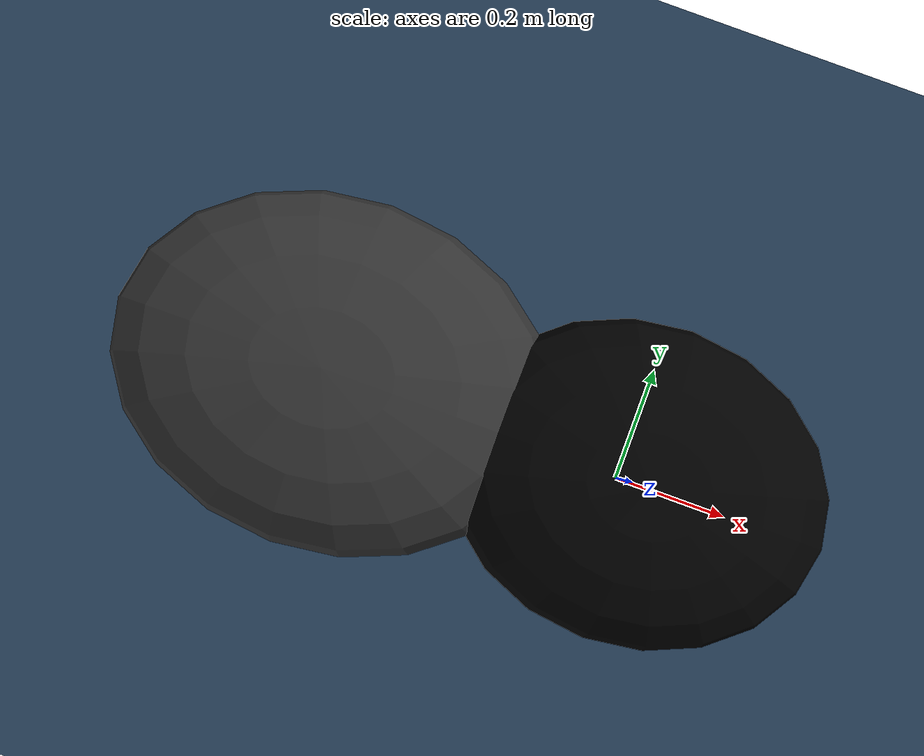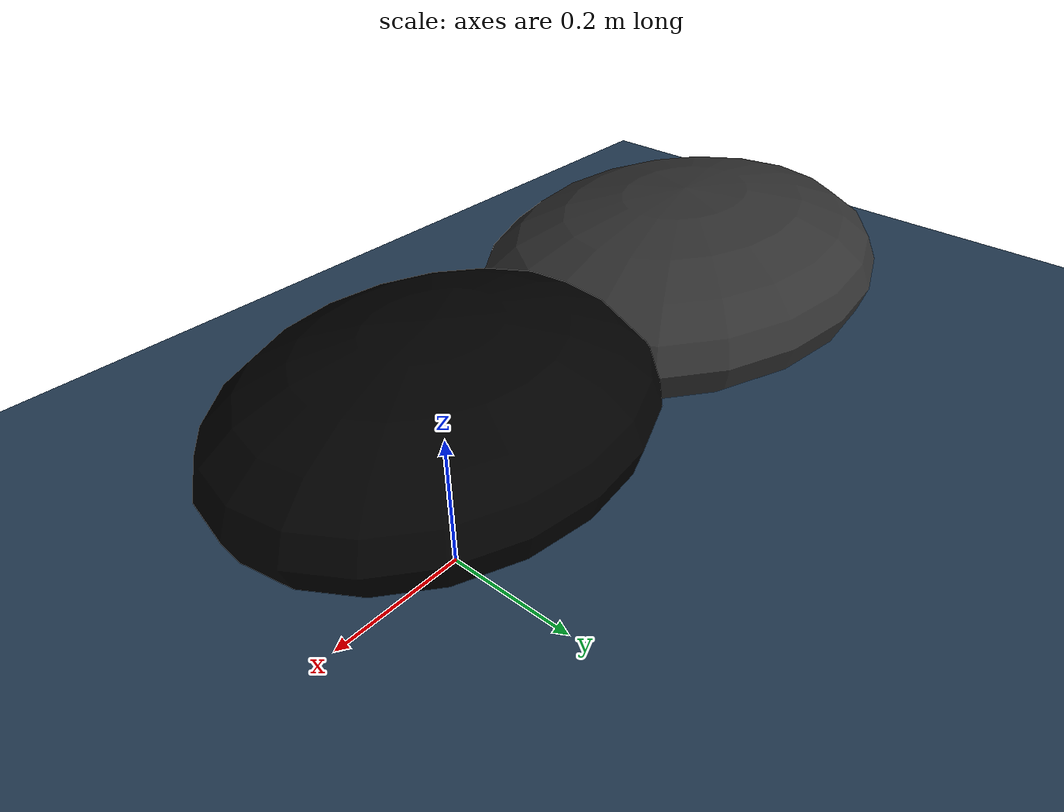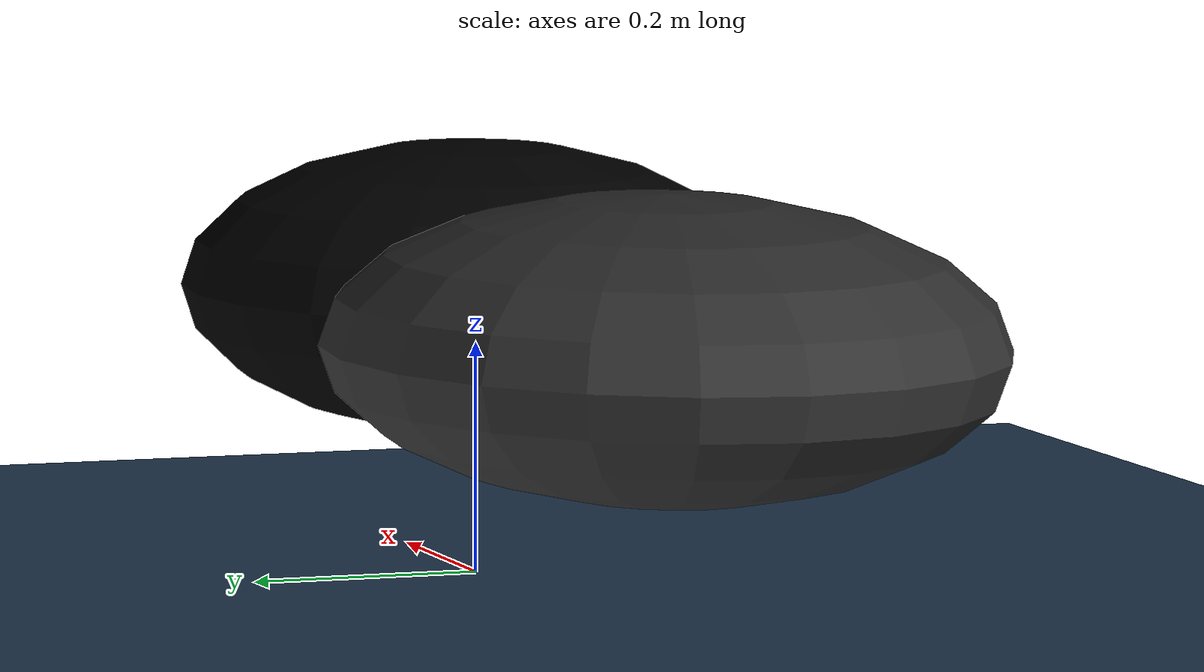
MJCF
<mujoco model="spiderbot_scene">

    <option gravity="0 0 -9.81" timestep="0.002" />

    <asset>
        <texture type="skybox" builtin="gradient" rgb1="0.3 0.5 0.7" rgb2="0 0 0" width="512" height="512"/>
        <texture name="grid" type="2d" builtin="checker" rgb1=".1 .2 .3" rgb2=".2 .3 .4" width="300" height="300" mark="edge" markrgb=".2 .3 .4"/>
        <material name="grid_floor" texture="grid" texrepeat="1 1" texuniform="true"/>
    </asset>

    <default>
        <default class="coxa">
            <joint type="hinge" axis="0 1 0" pos="0 0 0" limited="true" range="-45 45"/>
            <geom type="sphere" size="0.04" mass="1" contype="4" conaffinity="1"/>
        </default>
        <default class="femur">
            <joint type="hinge" axis="1 0 0" pos="0 0 0" limited="true" range="-90 0"/>
            <geom type="capsule" fromto="0 0 0  0 0 -0.25" size="0.04" mass="1"/>
        </default>
        <default class="tibia">
            <joint type="hinge" axis="1 0 0" pos="0 0 0" limited="true" range="0 135"/>
            <geom type="capsule" fromto="0 0 0  0 0 -0.25" size="0.02" mass="1"/>
        </default>
        <default class="claw">
            <geom type="capsule" fromto="0 0 0  0 0 -0.025" size="0.02" rgba="0.5 0.5 0.5 1" friction="5.0 0.01 0.001"/>
        </default>
    </default>

    <worldbody>
        <light pos="0 0 4" dir="0 0 -1" castshadow="true"/>

        <geom name="floor" type="plane" size="0 0 0.25" material="grid_floor" contype="1" conaffinity="7"/>

        <body name="target" pos="0 0 0.75" mocap="true">
            <geom name="target_backward_geom" type="cylinder" fromto="0 0 0 -0.075 0 0" size="0.01 0" rgba="0.1 0.4 0.85 0" contype="0" conaffinity="0"/>
            <geom name="target_forward_geom" type="sphere" size="0.015 0" rgba="1 0.25 0 0" contype="0" conaffinity="0"/>
        </body>

        <body name="pose_arrow" pos="0 0 0.75" mocap="true">
            <geom name="pose_arrow_backward_geom" type="cylinder" fromto="0 0 0 -0.075 0 0" size="0.01 0" rgba="0.9 0.6 0.15 0" contype="0" conaffinity="0"/>
            <geom name="pose_arrow_forward_geom" type="sphere" size="0.015 0" rgba="0 0.75 0 0" contype="0" conaffinity="0"/>
        </body>

        <body name="cephalothorax" pos="0 0 0.25">
            <freejoint name="cephalothorax_joint"/>
            <geom type="ellipsoid" size="0.3 0.25 0.125" rgba="0 0 0 1" mass="0.5" friction="1 0.01 0.0001" contype="2" conaffinity="1"/>

            <body name="abdomen" pos="-0.5 0 0">
                <geom type="ellipsoid" size="0.35 0.275 0.125" rgba="0.2 0.2 0.2 1" mass="0.05" friction="1 0.01 0.0001"/>
            </body>

            <!-- Eyes -->
            <camera name="l_eye" pos="0.3 0.05 0" euler="90 -90 0"/>
            <camera name="r_eye" pos="0.3 -0.05 0" euler="90 -90 0"/>

            <!-- Cephalothorax connects to coxa [then trochanter] then femur [then patella] then tibia [then metatarsus] [then tarsus] then claws -->
            <!-- Legs are built dynamically with Python -->

        </body>
    </worldbody>

    <!-- Left coxa to cephalothorax -->
    <actuator>
        <position name="servo_l_i_coxa_pitch" joint="l_i_cephalothorax_coxa_joint" kp="40" ctrlrange="-45 45" forcerange="-20 20"/>
    </actuator>
    <actuator>
        <position name="servo_l_ii_coxa_pitch" joint="l_ii_cephalothorax_coxa_joint" kp="40" ctrlrange="-45 45" forcerange="-20 20"/>
    </actuator>
    <actuator>
        <position name="servo_l_iii_coxa_pitch" joint="l_iii_cephalothorax_coxa_joint" kp="40" ctrlrange="-45 45" forcerange="-20 20"/>
    </actuator>
    <actuator>
        <position name="servo_l_iv_coxa_pitch" joint="l_iv_cephalothorax_coxa_joint" kp="40" ctrlrange="-45 45" forcerange="-20 20"/>
    </actuator>

    <!-- Left femur to coxa -->
    <actuator>
        <position name="servo_l_i_femur_pitch" joint="l_i_coxa_femur_joint" kp="40" ctrlrange="-90 0" forcerange="-20 20"/>
    </actuator>
    <actuator>
        <position name="servo_l_ii_femur_pitch" joint="l_ii_coxa_femur_joint" kp="40" ctrlrange="-90 0" forcerange="-20 20"/>
    </actuator>
    <actuator>
        <position name="servo_l_iii_femur_pitch" joint="l_iii_coxa_femur_joint" kp="40" ctrlrange="-90 0" forcerange="-20 20"/>
    </actuator>
    <actuator>
        <position name="servo_l_iv_femur_pitch" joint="l_iv_coxa_femur_joint" kp="40" ctrlrange="-90 0" forcerange="-20 20"/>
    </actuator>

    <!-- Left tibia to femur -->
    <actuator>
        <position name="servo_l_i_tibia_pitch" joint="l_i_femur_tibia_joint" kp="40" ctrlrange="0 135" forcerange="-20 20"/>
    </actuator>
    <actuator>
        <position name="servo_l_ii_tibia_pitch" joint="l_ii_femur_tibia_joint" kp="40" ctrlrange="0 135" forcerange="-20 20"/>
    </actuator>
    <actuator>
        <position name="servo_l_iii_tibia_pitch" joint="l_iii_femur_tibia_joint" kp="40" ctrlrange="0 135" forcerange="-20 20"/>
    </actuator>
    <actuator>
        <position name="servo_l_iv_tibia_pitch" joint="l_iv_femur_tibia_joint" kp="40" ctrlrange="0 135" forcerange="-20 20"/>
    </actuator>

    <!-- Right coxa to body -->
    <actuator>
        <position name="servo_r_i_coxa_pitch" joint="r_i_cephalothorax_coxa_joint" kp="40" ctrlrange="-45 45" forcerange="-20 20"/>
    </actuator>
    <actuator>
        <position name="servo_r_ii_coxa_pitch" joint="r_ii_cephalothorax_coxa_joint" kp="40" ctrlrange="-45 45" forcerange="-20 20"/>
    </actuator>
    <actuator>
        <position name="servo_r_iii_coxa_pitch" joint="r_iii_cephalothorax_coxa_joint" kp="40" ctrlrange="-45 45" forcerange="-20 20"/>
    </actuator>
    <actuator>
        <position name="servo_r_iv_coxa_pitch" joint="r_iv_cephalothorax_coxa_joint" kp="40" ctrlrange="-45 45" forcerange="-20 20"/>
    </actuator>

    <!-- Right femur to coxa -->
    <actuator>
        <position name="servo_r_i_femur_pitch" joint="r_i_coxa_femur_joint" kp="40" ctrlrange="-90 0" forcerange="-20 20"/>
    </actuator>
    <actuator>
        <position name="servo_r_ii_femur_pitch" joint="r_ii_coxa_femur_joint" kp="40" ctrlrange="-90 0" forcerange="-20 20"/>
    </actuator>
    <actuator>
        <position name="servo_r_iii_femur_pitch" joint="r_iii_coxa_femur_joint" kp="40" ctrlrange="-90 0" forcerange="-20 20"/>
    </actuator>
    <actuator>
        <position name="servo_r_iv_femur_pitch" joint="r_iv_coxa_femur_joint" kp="40" ctrlrange="-90 0" forcerange="-20 20"/>
    </actuator>

    <!-- Right tibia to femur -->
    <actuator>
        <position name="servo_r_i_tibia_pitch" joint="r_i_femur_tibia_joint" kp="40" ctrlrange="0 135" forcerange="-20 20"/>
    </actuator>
    <actuator>
        <position name="servo_r_ii_tibia_pitch" joint="r_ii_femur_tibia_joint" kp="40" ctrlrange="0 135" forcerange="-20 20"/>
    </actuator>
    <actuator>
        <position name="servo_r_iii_tibia_pitch" joint="r_iii_femur_tibia_joint" kp="40" ctrlrange="0 135" forcerange="-20 20"/>
    </actuator>
    <actuator>
        <position name="servo_r_iv_tibia_pitch" joint="r_iv_femur_tibia_joint" kp="40" ctrlrange="0 135" forcerange="-20 20"/>
    </actuator>

</mujoco>
